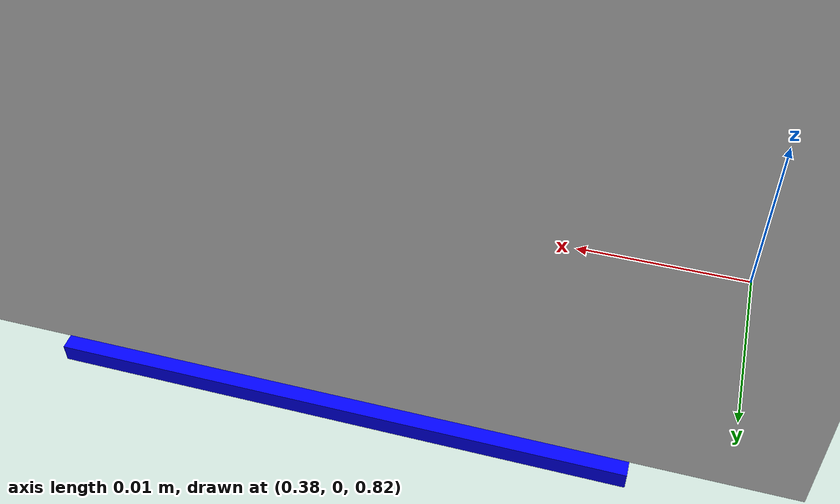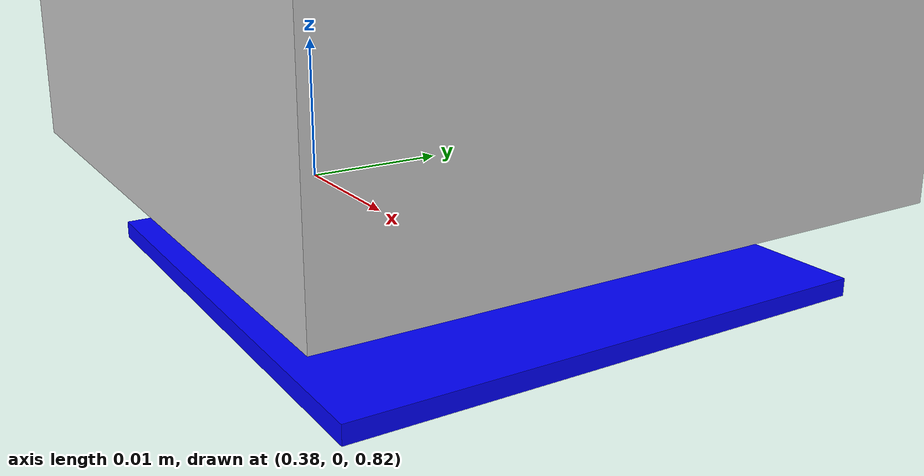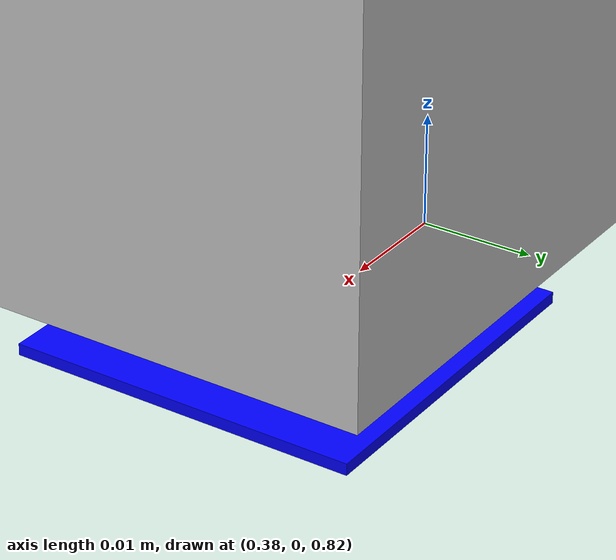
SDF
<?xml version="1.0" ?>
<sdf version="1.6">
  <world name="default">
    <!-- FIX: Add the Gazebo ROS plugin that provides the /set_entity_state service -->
    <plugin name="gazebo_ros_state" filename="libgazebo_ros_state.so">
      <ros>
        <namespace>/gazebo</namespace>
      </ros>
      <update_rate>10</update_rate>
    </plugin>

    <include>
      <uri>model://ground_plane</uri>
    </include>
    <include>
      <uri>model://sun</uri>
    </include>

    <model name="aircraft_wing_sheet">
      <pose>0 0 0.85 0 0 0</pose>
      <static>true</static>
      <link name="wing_link">
        <collision name="wing_collision">
          <geometry>
            <box>
              <size>1.5 1.0 0.05</size>
            </box>
          </geometry>
        </collision>
        <visual name="wing_visual">
          <geometry>
            <box>
              <size>1.5 1.0 0.05</size>
            </box>
          </geometry>
          <material>
            <ambient>0.7 0.7 0.7 1</ambient>
            <diffuse>0.8 0.8 0.8 1</diffuse>
          </material>
        </visual>
        <!-- The blue square visual has been removed from here -->
      </link>
    </model>

    <!-- FIX: Create a separate, movable model for the blue square -->
    <model name="blue_square">
      <!-- Initial position matches the old visual's position -->
      <pose>0.40 0 0.82 0 0 0</pose>
      <static>false</static>
      <link name="link">
        <kinematic>true</kinematic>
        <visual name="visual">
          <geometry>
            <box>
              <size>0.03 0.03 0.001</size>
            </box>
          </geometry>
          <material>
            <ambient>0 0 1 1</ambient>
            <diffuse>0 0 1 1</diffuse>
          </material>
        </visual>
        <!-- Add a collision shape so the depth camera can see it -->
        <collision name="collision">
           <geometry>
            <box>
              <size>0.03 0.03 0.001</size>
            </box>
          </geometry>
        </collision>
      </link>
    </model>

    <physics type="ode">
      <max_step_size>0.001</max_step_size>
      <real_time_factor>1</real_time_factor>
      <real_time_update_rate>1000</real_time_update_rate>
      <gravity>0 0 -9.81</gravity>
    </physics>
  </world>
</sdf>
